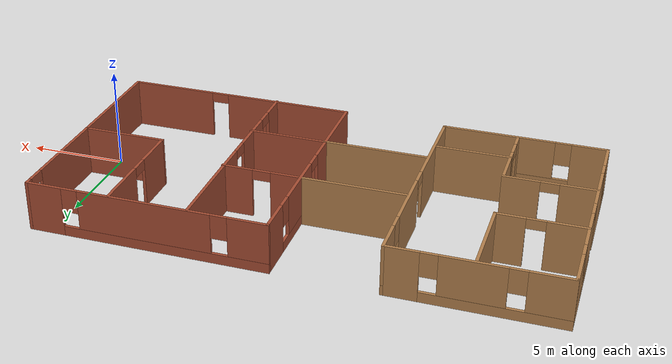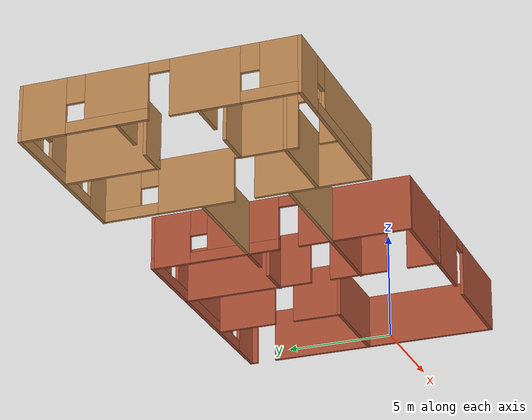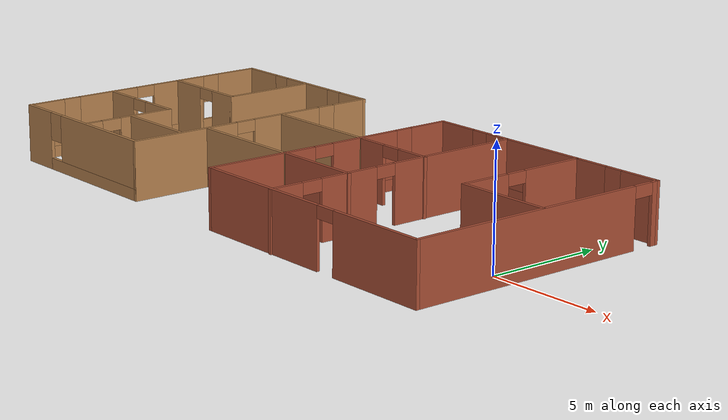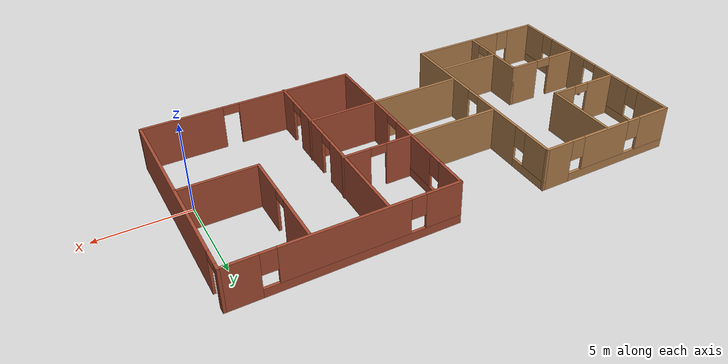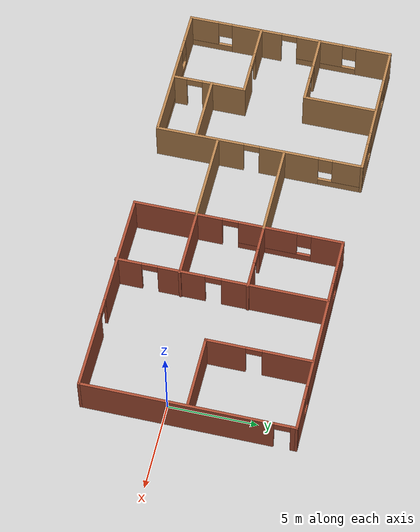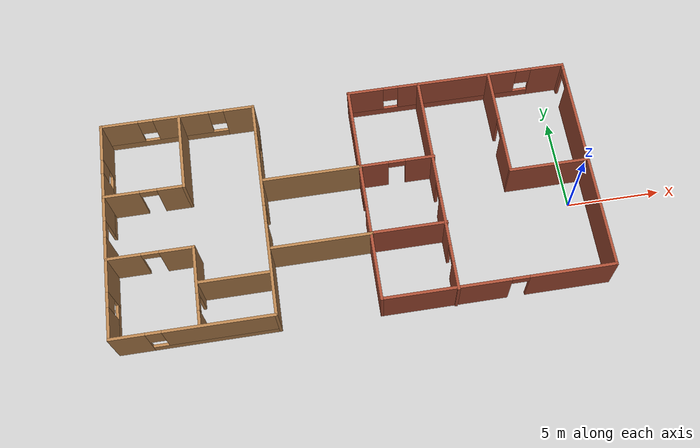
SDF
<?xml version='1.0'?>
<sdf version='1.6'>
  <model name='myhouse'>
    <pose frame=''>-11.5639 1.35423 0 0 -0 0</pose>
    <link name='Wall_0'>
      <pose frame=''>6.64634 -5.89616 0 0 -0 0</pose>
      <visual name='Wall_0_Visual_0'>
        <pose frame=''>-2.69638 0 1.25 0 -0 0</pose>
        <geometry>
          <box>
            <size>6.60723 0.15 2.5</size>
          </box>
        </geometry>
        <material>
          <script>
            <uri>file://media/materials/scripts/gazebo.material</uri>
            <name>Gazebo/Bricks</name>
          </script>
          <ambient>0.760784 0.662745 0.627451 1</ambient>
        </material>
        <meta>
          <layer>0</layer>
        </meta>
      </visual>
      <collision name='Wall_0_Collision_0'>
        <geometry>
          <box>
            <size>6.60723 0.15 2.5</size>
          </box>
        </geometry>
        <pose frame=''>-2.69638 0 1.25 0 -0 0</pose>
      </collision>
      <visual name='Wall_0_Visual_1'>
        <pose frame=''>3.75362 0 1.25 0 -0 0</pose>
        <geometry>
          <box>
            <size>4.49277 0.15 2.5</size>
          </box>
        </geometry>
        <material>
          <script>
            <uri>file://media/materials/scripts/gazebo.material</uri>
            <name>Gazebo/Bricks</name>
          </script>
          <ambient>0.760784 0.662745 0.627451 1</ambient>
        </material>
        <meta>
          <layer>0</layer>
        </meta>
      </visual>
      <collision name='Wall_0_Collision_1'>
        <geometry>
          <box>
            <size>4.49277 0.15 2.5</size>
          </box>
        </geometry>
        <pose frame=''>3.75362 0 1.25 0 -0 0</pose>
      </collision>
      <visual name='Wall_0_Visual_2'>
        <pose frame=''>1.05723 0 2.25 0 -0 0</pose>
        <geometry>
          <box>
            <size>0.9 0.15 0.5</size>
          </box>
        </geometry>
        <material>
          <script>
            <uri>file://media/materials/scripts/gazebo.material</uri>
            <name>Gazebo/Bricks</name>
          </script>
          <ambient>0.760784 0.662745 0.627451 1</ambient>
        </material>
        <meta>
          <layer>0</layer>
        </meta>
      </visual>
      <collision name='Wall_0_Collision_2'>
        <geometry>
          <box>
            <size>0.9 0.15 0.5</size>
          </box>
        </geometry>
        <pose frame=''>1.05723 0 2.25 0 -0 0</pose>
      </collision>
    </link>
    <link name='Wall_1'>
      <pose frame=''>12.5713 0.028839 0 0 -0 1.5708</pose>
      <visual name='Wall_1_Visual_0'>
        <pose frame=''>-0.649931 0 1.25 0 -0 0</pose>
        <geometry>
          <box>
            <size>10.7001 0.15 2.5</size>
          </box>
        </geometry>
        <material>
          <script>
            <uri>file://media/materials/scripts/gazebo.material</uri>
            <name>Gazebo/Bricks</name>
          </script>
          <ambient>0.760784 0.662745 0.627451 1</ambient>
        </material>
        <meta>
          <layer>0</layer>
        </meta>
      </visual>
      <collision name='Wall_1_Collision_0'>
        <geometry>
          <box>
            <size>10.7001 0.15 2.5</size>
          </box>
        </geometry>
        <pose frame=''>-0.649931 0 1.25 0 -0 0</pose>
      </collision>
      <visual name='Wall_1_Visual_1'>
        <pose frame=''>5.80007 0 1.25 0 -0 0</pose>
        <geometry>
          <box>
            <size>0.399862 0.15 2.5</size>
          </box>
        </geometry>
        <material>
          <script>
            <uri>file://media/materials/scripts/gazebo.material</uri>
            <name>Gazebo/Bricks</name>
          </script>
          <ambient>0.760784 0.662745 0.627451 1</ambient>
        </material>
        <meta>
          <layer>0</layer>
        </meta>
      </visual>
      <collision name='Wall_1_Collision_1'>
        <geometry>
          <box>
            <size>0.399862 0.15 2.5</size>
          </box>
        </geometry>
        <pose frame=''>5.80007 0 1.25 0 -0 0</pose>
      </collision>
      <visual name='Wall_1_Visual_2'>
        <pose frame=''>5.15014 0 2.25 0 -0 0</pose>
        <geometry>
          <box>
            <size>0.9 0.15 0.5</size>
          </box>
        </geometry>
        <material>
          <script>
            <uri>file://media/materials/scripts/gazebo.material</uri>
            <name>Gazebo/Bricks</name>
          </script>
          <ambient>0.760784 0.662745 0.627451 1</ambient>
        </material>
        <meta>
          <layer>0</layer>
        </meta>
      </visual>
      <collision name='Wall_1_Collision_2'>
        <geometry>
          <box>
            <size>0.9 0.15 0.5</size>
          </box>
        </geometry>
        <pose frame=''>5.15014 0 2.25 0 -0 0</pose>
      </collision>
    </link>
    <link name='Wall_10'>
      <pose frame=''>8.43683 2.96482 0 0 -0 1.5708</pose>
      <visual name='Wall_10_Visual_0'>
        <pose frame=''>-1.85682 0 1.25 0 -0 0</pose>
        <geometry>
          <box>
            <size>2.28635 0.15 2.5</size>
          </box>
        </geometry>
        <material>
          <script>
            <uri>file://media/materials/scripts/gazebo.material</uri>
            <name>Gazebo/Bricks</name>
          </script>
          <ambient>0.760784 0.662745 0.627451 1</ambient>
        </material>
        <meta>
          <layer>0</layer>
        </meta>
      </visual>
      <collision name='Wall_10_Collision_0'>
        <geometry>
          <box>
            <size>2.28635 0.15 2.5</size>
          </box>
        </geometry>
        <pose frame=''>-1.85682 0 1.25 0 -0 0</pose>
      </collision>
      <visual name='Wall_10_Visual_1'>
        <pose frame=''>1.59318 0 1.25 0 -0 0</pose>
        <geometry>
          <box>
            <size>2.81365 0.15 2.5</size>
          </box>
        </geometry>
        <material>
          <script>
            <uri>file://media/materials/scripts/gazebo.material</uri>
            <name>Gazebo/Bricks</name>
          </script>
          <ambient>0.760784 0.662745 0.627451 1</ambient>
        </material>
        <meta>
          <layer>0</layer>
        </meta>
      </visual>
      <collision name='Wall_10_Collision_1'>
        <geometry>
          <box>
            <size>2.81365 0.15 2.5</size>
          </box>
        </geometry>
        <pose frame=''>1.59318 0 1.25 0 -0 0</pose>
      </collision>
      <visual name='Wall_10_Visual_2'>
        <pose frame=''>-0.26365 0 2.25 0 -0 0</pose>
        <geometry>
          <box>
            <size>0.9 0.15 0.5</size>
          </box>
        </geometry>
        <material>
          <script>
            <uri>file://media/materials/scripts/gazebo.material</uri>
            <name>Gazebo/Bricks</name>
          </script>
          <ambient>0.760784 0.662745 0.627451 1</ambient>
        </material>
        <meta>
          <layer>0</layer>
        </meta>
      </visual>
      <collision name='Wall_10_Collision_2'>
        <geometry>
          <box>
            <size>0.9 0.15 0.5</size>
          </box>
        </geometry>
        <pose frame=''>-0.26365 0 2.25 0 -0 0</pose>
      </collision>
    </link>
    <link name='Wall_12'>
      <pose frame=''>2.68459 1.47756 0 0 -0 0</pose>
      <visual name='Wall_12_Visual_0'>
        <pose frame=''>-1.2392 0 1.25 0 -0 0</pose>
        <geometry>
          <box>
            <size>1.5216 0.15 2.5</size>
          </box>
        </geometry>
        <material>
          <script>
            <uri>file://media/materials/scripts/gazebo.material</uri>
            <name>Gazebo/Bricks</name>
          </script>
          <ambient>0.760784 0.662745 0.627451 1</ambient>
        </material>
        <meta>
          <layer>0</layer>
        </meta>
      </visual>
      <collision name='Wall_12_Collision_0'>
        <geometry>
          <box>
            <size>1.5216 0.15 2.5</size>
          </box>
        </geometry>
        <pose frame=''>-1.2392 0 1.25 0 -0 0</pose>
      </collision>
      <visual name='Wall_12_Visual_1'>
        <pose frame=''>1.2108 0 1.25 0 -0 0</pose>
        <geometry>
          <box>
            <size>1.57841 0.15 2.5</size>
          </box>
        </geometry>
        <material>
          <script>
            <uri>file://media/materials/scripts/gazebo.material</uri>
            <name>Gazebo/Bricks</name>
          </script>
          <ambient>0.760784 0.662745 0.627451 1</ambient>
        </material>
        <meta>
          <layer>0</layer>
        </meta>
      </visual>
      <collision name='Wall_12_Collision_1'>
        <geometry>
          <box>
            <size>1.57841 0.15 2.5</size>
          </box>
        </geometry>
        <pose frame=''>1.2108 0 1.25 0 -0 0</pose>
      </collision>
      <visual name='Wall_12_Visual_2'>
        <pose frame=''>-0.028405 0 2.25 0 -0 0</pose>
        <geometry>
          <box>
            <size>0.9 0.15 0.5</size>
          </box>
        </geometry>
        <material>
          <script>
            <uri>file://media/materials/scripts/gazebo.material</uri>
            <name>Gazebo/Bricks</name>
          </script>
          <ambient>0.760784 0.662745 0.627451 1</ambient>
        </material>
        <meta>
          <layer>0</layer>
        </meta>
      </visual>
      <collision name='Wall_12_Collision_2'>
        <geometry>
          <box>
            <size>0.9 0.15 0.5</size>
          </box>
        </geometry>
        <pose frame=''>-0.028405 0 2.25 0 -0 0</pose>
      </collision>
    </link>
    <link name='Wall_14'>
      <collision name='Wall_14_Collision'>
        <geometry>
          <box>
            <size>4 0.15 2.5</size>
          </box>
        </geometry>
        <pose frame=''>0 0 1.25 0 -0 0</pose>
      </collision>
      <visual name='Wall_14_Visual'>
        <pose frame=''>0 0 1.25 0 -0 0</pose>
        <geometry>
          <box>
            <size>4 0.15 2.5</size>
          </box>
        </geometry>
        <material>
          <script>
            <uri>file://media/materials/scripts/gazebo.material</uri>
            <name>Gazebo/Bricks</name>
          </script>
          <ambient>0.760784 0.662745 0.627451 1</ambient>
        </material>
        <meta>
          <layer>0</layer>
        </meta>
      </visual>
      <pose frame=''>2.68459 -2.34622 0 0 -0 0</pose>
    </link>
    <link name='Wall_16'>
      <collision name='Wall_16_Collision'>
        <geometry>
          <box>
            <size>5.25 0.15 2.5</size>
          </box>
        </geometry>
        <pose frame=''>0 0 1.25 0 -0 0</pose>
      </collision>
      <visual name='Wall_16_Visual'>
        <pose frame=''>0 0 1.25 0 -0 0</pose>
        <geometry>
          <box>
            <size>5.25 0.15 2.5</size>
          </box>
        </geometry>
        <material>
          <script>
            <uri>file://media/materials/scripts/gazebo.material</uri>
            <name>Gazebo/Wood</name>
          </script>
          <ambient>0 0 0 1</ambient>
        </material>
        <meta>
          <layer>0</layer>
        </meta>
      </visual>
      <pose frame=''>-1.79041 1.47756 0 0 -0 3.14159</pose>
    </link>
    <link name='Wall_18'>
      <collision name='Wall_18_Collision'>
        <geometry>
          <box>
            <size>5.25 0.15 2.5</size>
          </box>
        </geometry>
        <pose frame=''>0 0 1.25 0 -0 0</pose>
      </collision>
      <visual name='Wall_18_Visual'>
        <pose frame=''>0 0 1.25 0 -0 0</pose>
        <geometry>
          <box>
            <size>5.25 0.15 2.5</size>
          </box>
        </geometry>
        <material>
          <script>
            <uri>file://media/materials/scripts/gazebo.material</uri>
            <name>Gazebo/Wood</name>
          </script>
          <ambient>0 0 0 1</ambient>
        </material>
        <meta>
          <layer>0</layer>
        </meta>
      </visual>
      <pose frame=''>-1.79041 -2.37244 0 0 -0 0</pose>
    </link>
    <link name='Wall_2'>
      <pose frame=''>6.64634 5.95384 0 0 -0 3.14159</pose>
      <visual name='Wall_2_Visual_0'>
        <pose frame=''>-5.07459 0 1.25 0 -0 0</pose>
        <geometry>
          <box>
            <size>1.85083 0.15 2.5</size>
          </box>
        </geometry>
        <material>
          <script>
            <uri>file://media/materials/scripts/gazebo.material</uri>
            <name>Gazebo/Bricks</name>
          </script>
          <ambient>0.760784 0.662745 0.627451 1</ambient>
        </material>
        <meta>
          <layer>0</layer>
        </meta>
      </visual>
      <collision name='Wall_2_Collision_0'>
        <geometry>
          <box>
            <size>1.85083 0.15 2.5</size>
          </box>
        </geometry>
        <pose frame=''>-5.07459 0 1.25 0 -0 0</pose>
      </collision>
      <visual name='Wall_2_Visual_1'>
        <pose frame=''>0.925414 0 0.25 0 -0 0</pose>
        <geometry>
          <box>
            <size>10.1492 0.15 0.5</size>
          </box>
        </geometry>
        <material>
          <script>
            <uri>file://media/materials/scripts/gazebo.material</uri>
            <name>Gazebo/Bricks</name>
          </script>
          <ambient>0.760784 0.662745 0.627451 1</ambient>
        </material>
        <meta>
          <layer>0</layer>
        </meta>
      </visual>
      <collision name='Wall_2_Collision_1'>
        <geometry>
          <box>
            <size>10.1492 0.15 0.5</size>
          </box>
        </geometry>
        <pose frame=''>0.925414 0 0.25 0 -0 0</pose>
      </collision>
      <visual name='Wall_2_Visual_2'>
        <pose frame=''>-0.06305 0 1.5 0 -0 0</pose>
        <geometry>
          <box>
            <size>6.57224 0.15 2</size>
          </box>
        </geometry>
        <material>
          <script>
            <uri>file://media/materials/scripts/gazebo.material</uri>
            <name>Gazebo/Bricks</name>
          </script>
          <ambient>0.760784 0.662745 0.627451 1</ambient>
        </material>
        <meta>
          <layer>0</layer>
        </meta>
      </visual>
      <collision name='Wall_2_Collision_2'>
        <geometry>
          <box>
            <size>6.57224 0.15 2</size>
          </box>
        </geometry>
        <pose frame=''>-0.06305 0 1.5 0 -0 0</pose>
      </collision>
      <visual name='Wall_2_Visual_3'>
        <pose frame=''>5.01154 0 1.5 0 -0 0</pose>
        <geometry>
          <box>
            <size>1.97693 0.15 2</size>
          </box>
        </geometry>
        <material>
          <script>
            <uri>file://media/materials/scripts/gazebo.material</uri>
            <name>Gazebo/Bricks</name>
          </script>
          <ambient>0.760784 0.662745 0.627451 1</ambient>
        </material>
        <meta>
          <layer>0</layer>
        </meta>
      </visual>
      <collision name='Wall_2_Collision_3'>
        <geometry>
          <box>
            <size>1.97693 0.15 2</size>
          </box>
        </geometry>
        <pose frame=''>5.01154 0 1.5 0 -0 0</pose>
      </collision>
      <visual name='Wall_2_Visual_4'>
        <pose frame=''>-3.74917 0 1.9 0 -0 0</pose>
        <geometry>
          <box>
            <size>0.8 0.15 1.2</size>
          </box>
        </geometry>
        <material>
          <script>
            <uri>file://media/materials/scripts/gazebo.material</uri>
            <name>Gazebo/Bricks</name>
          </script>
          <ambient>0.760784 0.662745 0.627451 1</ambient>
        </material>
        <meta>
          <layer>0</layer>
        </meta>
      </visual>
      <collision name='Wall_2_Collision_4'>
        <geometry>
          <box>
            <size>0.8 0.15 1.2</size>
          </box>
        </geometry>
        <pose frame=''>-3.74917 0 1.9 0 -0 0</pose>
      </collision>
      <visual name='Wall_2_Visual_5'>
        <pose frame=''>3.62307 0 1.9 0 -0 0</pose>
        <geometry>
          <box>
            <size>0.8 0.15 1.2</size>
          </box>
        </geometry>
        <material>
          <script>
            <uri>file://media/materials/scripts/gazebo.material</uri>
            <name>Gazebo/Bricks</name>
          </script>
          <ambient>0.760784 0.662745 0.627451 1</ambient>
        </material>
        <meta>
          <layer>0</layer>
        </meta>
      </visual>
      <collision name='Wall_2_Collision_5'>
        <geometry>
          <box>
            <size>0.8 0.15 1.2</size>
          </box>
        </geometry>
        <pose frame=''>3.62307 0 1.9 0 -0 0</pose>
      </collision>
    </link>
    <link name='Wall_21'>
      <pose frame=''>-4.47134 0.030313 0 0 -0 1.5708</pose>
      <visual name='Wall_21_Visual_0'>
        <pose frame=''>-3.44968 0 1.25 0 -0 0</pose>
        <geometry>
          <box>
            <size>5.10065 0.15 2.5</size>
          </box>
        </geometry>
        <material>
          <script>
            <uri>file://media/materials/scripts/gazebo.material</uri>
            <name>Gazebo/Wood</name>
          </script>
          <ambient>0.333333 1 0 1</ambient>
        </material>
        <meta>
          <layer>0</layer>
        </meta>
      </visual>
      <collision name='Wall_21_Collision_0'>
        <geometry>
          <box>
            <size>5.10065 0.15 2.5</size>
          </box>
        </geometry>
        <pose frame=''>-3.44968 0 1.25 0 -0 0</pose>
      </collision>
      <visual name='Wall_21_Visual_1'>
        <pose frame=''>1.71697 0 1.25 0 -0 0</pose>
        <geometry>
          <box>
            <size>3.43263 0.15 2.5</size>
          </box>
        </geometry>
        <material>
          <script>
            <uri>file://media/materials/scripts/gazebo.material</uri>
            <name>Gazebo/Wood</name>
          </script>
          <ambient>0.333333 1 0 1</ambient>
        </material>
        <meta>
          <layer>0</layer>
        </meta>
      </visual>
      <collision name='Wall_21_Collision_1'>
        <geometry>
          <box>
            <size>3.43263 0.15 2.5</size>
          </box>
        </geometry>
        <pose frame=''>1.71697 0 1.25 0 -0 0</pose>
      </collision>
      <visual name='Wall_21_Visual_2'>
        <pose frame=''>4.71664 0 0.25 0 -0 0</pose>
        <geometry>
          <box>
            <size>2.56672 0.15 0.5</size>
          </box>
        </geometry>
        <material>
          <script>
            <uri>file://media/materials/scripts/gazebo.material</uri>
            <name>Gazebo/Wood</name>
          </script>
          <ambient>0.333333 1 0 1</ambient>
        </material>
        <meta>
          <layer>0</layer>
        </meta>
      </visual>
      <collision name='Wall_21_Collision_2'>
        <geometry>
          <box>
            <size>2.56672 0.15 0.5</size>
          </box>
        </geometry>
        <pose frame=''>4.71664 0 0.25 0 -0 0</pose>
      </collision>
      <visual name='Wall_21_Visual_3'>
        <pose frame=''>5.11664 0 1.5 0 -0 0</pose>
        <geometry>
          <box>
            <size>1.76672 0.15 2</size>
          </box>
        </geometry>
        <material>
          <script>
            <uri>file://media/materials/scripts/gazebo.material</uri>
            <name>Gazebo/Wood</name>
          </script>
          <ambient>0.333333 1 0 1</ambient>
        </material>
        <meta>
          <layer>0</layer>
        </meta>
      </visual>
      <collision name='Wall_21_Collision_3'>
        <geometry>
          <box>
            <size>1.76672 0.15 2</size>
          </box>
        </geometry>
        <pose frame=''>5.11664 0 1.5 0 -0 0</pose>
      </collision>
      <visual name='Wall_21_Visual_4'>
        <pose frame=''>3.83328 0 1.9 0 -0 0</pose>
        <geometry>
          <box>
            <size>0.8 0.15 1.2</size>
          </box>
        </geometry>
        <material>
          <script>
            <uri>file://media/materials/scripts/gazebo.material</uri>
            <name>Gazebo/Wood</name>
          </script>
          <ambient>0.333333 1 0 1</ambient>
        </material>
        <meta>
          <layer>0</layer>
        </meta>
      </visual>
      <collision name='Wall_21_Collision_4'>
        <geometry>
          <box>
            <size>0.8 0.15 1.2</size>
          </box>
        </geometry>
        <pose frame=''>3.83328 0 1.9 0 -0 0</pose>
      </collision>
      <visual name='Wall_21_Visual_5'>
        <pose frame=''>-0.449349 0 2.25 0 -0 0</pose>
        <geometry>
          <box>
            <size>0.9 0.15 0.5</size>
          </box>
        </geometry>
        <material>
          <script>
            <uri>file://media/materials/scripts/gazebo.material</uri>
            <name>Gazebo/Wood</name>
          </script>
          <ambient>0.333333 1 0 1</ambient>
        </material>
        <meta>
          <layer>0</layer>
        </meta>
      </visual>
      <collision name='Wall_21_Collision_5'>
        <geometry>
          <box>
            <size>0.9 0.15 0.5</size>
          </box>
        </geometry>
        <pose frame=''>-0.449349 0 2.25 0 -0 0</pose>
      </collision>
    </link>
    <link name='Wall_22'>
      <pose frame=''>-8.52134 5.95531 0 0 -0 3.14159</pose>
      <visual name='Wall_22_Visual_0'>
        <pose frame=''>-3.29332 0 1.25 0 -0 0</pose>
        <geometry>
          <box>
            <size>1.66337 0.15 2.5</size>
          </box>
        </geometry>
        <material>
          <script>
            <uri>file://media/materials/scripts/gazebo.material</uri>
            <name>Gazebo/Wood</name>
          </script>
          <ambient>0.333333 1 0 1</ambient>
        </material>
        <meta>
          <layer>0</layer>
        </meta>
      </visual>
      <collision name='Wall_22_Collision_0'>
        <geometry>
          <box>
            <size>1.66337 0.15 2.5</size>
          </box>
        </geometry>
        <pose frame=''>-3.29332 0 1.25 0 -0 0</pose>
      </collision>
      <visual name='Wall_22_Visual_1'>
        <pose frame=''>0.831683 0 0.25 0 -0 0</pose>
        <geometry>
          <box>
            <size>6.58663 0.15 0.5</size>
          </box>
        </geometry>
        <material>
          <script>
            <uri>file://media/materials/scripts/gazebo.material</uri>
            <name>Gazebo/Wood</name>
          </script>
          <ambient>0.333333 1 0 1</ambient>
        </material>
        <meta>
          <layer>0</layer>
        </meta>
      </visual>
      <collision name='Wall_22_Collision_1'>
        <geometry>
          <box>
            <size>6.58663 0.15 0.5</size>
          </box>
        </geometry>
        <pose frame=''>0.831683 0 0.25 0 -0 0</pose>
      </collision>
      <visual name='Wall_22_Visual_2'>
        <pose frame=''>-0.180335 0 1.5 0 -0 0</pose>
        <geometry>
          <box>
            <size>2.9626 0.15 2</size>
          </box>
        </geometry>
        <material>
          <script>
            <uri>file://media/materials/scripts/gazebo.material</uri>
            <name>Gazebo/Wood</name>
          </script>
          <ambient>0.333333 1 0 1</ambient>
        </material>
        <meta>
          <layer>0</layer>
        </meta>
      </visual>
      <collision name='Wall_22_Collision_2'>
        <geometry>
          <box>
            <size>2.9626 0.15 2</size>
          </box>
        </geometry>
        <pose frame=''>-0.180335 0 1.5 0 -0 0</pose>
      </collision>
      <visual name='Wall_22_Visual_3'>
        <pose frame=''>3.11298 0 1.5 0 -0 0</pose>
        <geometry>
          <box>
            <size>2.02404 0.15 2</size>
          </box>
        </geometry>
        <material>
          <script>
            <uri>file://media/materials/scripts/gazebo.material</uri>
            <name>Gazebo/Wood</name>
          </script>
          <ambient>0.333333 1 0 1</ambient>
        </material>
        <meta>
          <layer>0</layer>
        </meta>
      </visual>
      <collision name='Wall_22_Collision_3'>
        <geometry>
          <box>
            <size>2.02404 0.15 2</size>
          </box>
        </geometry>
        <pose frame=''>3.11298 0 1.5 0 -0 0</pose>
      </collision>
      <visual name='Wall_22_Visual_4'>
        <pose frame=''>-2.06163 0 1.9 0 -0 0</pose>
        <geometry>
          <box>
            <size>0.8 0.15 1.2</size>
          </box>
        </geometry>
        <material>
          <script>
            <uri>file://media/materials/scripts/gazebo.material</uri>
            <name>Gazebo/Wood</name>
          </script>
          <ambient>0.333333 1 0 1</ambient>
        </material>
        <meta>
          <layer>0</layer>
        </meta>
      </visual>
      <collision name='Wall_22_Collision_4'>
        <geometry>
          <box>
            <size>0.8 0.15 1.2</size>
          </box>
        </geometry>
        <pose frame=''>-2.06163 0 1.9 0 -0 0</pose>
      </collision>
      <visual name='Wall_22_Visual_5'>
        <pose frame=''>1.70096 0 1.9 0 -0 0</pose>
        <geometry>
          <box>
            <size>0.8 0.15 1.2</size>
          </box>
        </geometry>
        <material>
          <script>
            <uri>file://media/materials/scripts/gazebo.material</uri>
            <name>Gazebo/Wood</name>
          </script>
          <ambient>0.333333 1 0 1</ambient>
        </material>
        <meta>
          <layer>0</layer>
        </meta>
      </visual>
      <collision name='Wall_22_Collision_5'>
        <geometry>
          <box>
            <size>0.8 0.15 1.2</size>
          </box>
        </geometry>
        <pose frame=''>1.70096 0 1.9 0 -0 0</pose>
      </collision>
    </link>
    <link name='Wall_23'>
      <pose frame=''>-12.5713 0.030313 0 0 0 -1.5708</pose>
      <visual name='Wall_23_Visual_0'>
        <pose frame=''>-4.96369 0 1.25 0 -0 0</pose>
        <geometry>
          <box>
            <size>2.07262 0.15 2.5</size>
          </box>
        </geometry>
        <material>
          <script>
            <uri>file://media/materials/scripts/gazebo.material</uri>
            <name>Gazebo/Wood</name>
          </script>
          <ambient>0.333333 1 0 1</ambient>
        </material>
        <meta>
          <layer>0</layer>
        </meta>
      </visual>
      <collision name='Wall_23_Collision_0'>
        <geometry>
          <box>
            <size>2.07262 0.15 2.5</size>
          </box>
        </geometry>
        <pose frame=''>-4.96369 0 1.25 0 -0 0</pose>
      </collision>
      <visual name='Wall_23_Visual_1'>
        <pose frame=''>1.98856 0 1.25 0 -0 0</pose>
        <geometry>
          <box>
            <size>2.97378 0.15 2.5</size>
          </box>
        </geometry>
        <material>
          <script>
            <uri>file://media/materials/scripts/gazebo.material</uri>
            <name>Gazebo/Wood</name>
          </script>
          <ambient>0.333333 1 0 1</ambient>
        </material>
        <meta>
          <layer>0</layer>
        </meta>
      </visual>
      <collision name='Wall_23_Collision_1'>
        <geometry>
          <box>
            <size>2.97378 0.15 2.5</size>
          </box>
        </geometry>
        <pose frame=''>1.98856 0 1.25 0 -0 0</pose>
      </collision>
      <visual name='Wall_23_Visual_2'>
        <pose frame=''>-2.16285 0 0.25 0 -0 0</pose>
        <geometry>
          <box>
            <size>3.52906 0.15 0.5</size>
          </box>
        </geometry>
        <material>
          <script>
            <uri>file://media/materials/scripts/gazebo.material</uri>
            <name>Gazebo/Wood</name>
          </script>
          <ambient>0.333333 1 0 1</ambient>
        </material>
        <meta>
          <layer>0</layer>
        </meta>
      </visual>
      <collision name='Wall_23_Collision_2'>
        <geometry>
          <box>
            <size>3.52906 0.15 0.5</size>
          </box>
        </geometry>
        <pose frame=''>-2.16285 0 0.25 0 -0 0</pose>
      </collision>
      <visual name='Wall_23_Visual_3'>
        <pose frame=''>4.73773 0 0.25 0 -0 0</pose>
        <geometry>
          <box>
            <size>2.52454 0.15 0.5</size>
          </box>
        </geometry>
        <material>
          <script>
            <uri>file://media/materials/scripts/gazebo.material</uri>
            <name>Gazebo/Wood</name>
          </script>
          <ambient>0.333333 1 0 1</ambient>
        </material>
        <meta>
          <layer>0</layer>
        </meta>
      </visual>
      <collision name='Wall_23_Collision_3'>
        <geometry>
          <box>
            <size>2.52454 0.15 0.5</size>
          </box>
        </geometry>
        <pose frame=''>4.73773 0 0.25 0 -0 0</pose>
      </collision>
      <visual name='Wall_23_Visual_4'>
        <pose frame=''>-1.76285 0 1.5 0 -0 0</pose>
        <geometry>
          <box>
            <size>2.72906 0.15 2</size>
          </box>
        </geometry>
        <material>
          <script>
            <uri>file://media/materials/scripts/gazebo.material</uri>
            <name>Gazebo/Wood</name>
          </script>
          <ambient>0.333333 1 0 1</ambient>
        </material>
        <meta>
          <layer>0</layer>
        </meta>
      </visual>
      <collision name='Wall_23_Collision_4'>
        <geometry>
          <box>
            <size>2.72906 0.15 2</size>
          </box>
        </geometry>
        <pose frame=''>-1.76285 0 1.5 0 -0 0</pose>
      </collision>
      <visual name='Wall_23_Visual_5'>
        <pose frame=''>-1.76285 0 1.5 0 -0 0</pose>
        <geometry>
          <box>
            <size>2.72906 0.15 2</size>
          </box>
        </geometry>
        <material>
          <script>
            <uri>file://media/materials/scripts/gazebo.material</uri>
            <name>Gazebo/Wood</name>
          </script>
          <ambient>0.333333 1 0 1</ambient>
        </material>
        <meta>
          <layer>0</layer>
        </meta>
      </visual>
      <collision name='Wall_23_Collision_5'>
        <geometry>
          <box>
            <size>2.72906 0.15 2</size>
          </box>
        </geometry>
        <pose frame=''>-1.76285 0 1.5 0 -0 0</pose>
      </collision>
      <visual name='Wall_23_Visual_6'>
        <pose frame=''>5.13773 0 1.5 0 -0 0</pose>
        <geometry>
          <box>
            <size>1.72454 0.15 2</size>
          </box>
        </geometry>
        <material>
          <script>
            <uri>file://media/materials/scripts/gazebo.material</uri>
            <name>Gazebo/Wood</name>
          </script>
          <ambient>0.333333 1 0 1</ambient>
        </material>
        <meta>
          <layer>0</layer>
        </meta>
      </visual>
      <collision name='Wall_23_Collision_6'>
        <geometry>
          <box>
            <size>1.72454 0.15 2</size>
          </box>
        </geometry>
        <pose frame=''>5.13773 0 1.5 0 -0 0</pose>
      </collision>
      <visual name='Wall_23_Visual_7'>
        <pose frame=''>-3.52738 0 1.9 0 -0 0</pose>
        <geometry>
          <box>
            <size>0.8 0.15 1.2</size>
          </box>
        </geometry>
        <material>
          <script>
            <uri>file://media/materials/scripts/gazebo.material</uri>
            <name>Gazebo/Wood</name>
          </script>
          <ambient>0.333333 1 0 1</ambient>
        </material>
        <meta>
          <layer>0</layer>
        </meta>
      </visual>
      <collision name='Wall_23_Collision_7'>
        <geometry>
          <box>
            <size>0.8 0.15 1.2</size>
          </box>
        </geometry>
        <pose frame=''>-3.52738 0 1.9 0 -0 0</pose>
      </collision>
      <visual name='Wall_23_Visual_8'>
        <pose frame=''>3.87546 0 1.9 0 -0 0</pose>
        <geometry>
          <box>
            <size>0.8 0.15 1.2</size>
          </box>
        </geometry>
        <material>
          <script>
            <uri>file://media/materials/scripts/gazebo.material</uri>
            <name>Gazebo/Wood</name>
          </script>
          <ambient>0.333333 1 0 1</ambient>
        </material>
        <meta>
          <layer>0</layer>
        </meta>
      </visual>
      <collision name='Wall_23_Collision_8'>
        <geometry>
          <box>
            <size>0.8 0.15 1.2</size>
          </box>
        </geometry>
        <pose frame=''>3.87546 0 1.9 0 -0 0</pose>
      </collision>
      <visual name='Wall_23_Visual_9'>
        <pose frame=''>0.051676 0 2.25 0 -0 0</pose>
        <geometry>
          <box>
            <size>0.9 0.15 0.5</size>
          </box>
        </geometry>
        <material>
          <script>
            <uri>file://media/materials/scripts/gazebo.material</uri>
            <name>Gazebo/Wood</name>
          </script>
          <ambient>0.333333 1 0 1</ambient>
        </material>
        <meta>
          <layer>0</layer>
        </meta>
      </visual>
      <collision name='Wall_23_Collision_9'>
        <geometry>
          <box>
            <size>0.9 0.15 0.5</size>
          </box>
        </geometry>
        <pose frame=''>0.051676 0 2.25 0 -0 0</pose>
      </collision>
      <visual name='Wall_23_Visual_10'>
        <pose frame=''>0.051676 0 2.25 0 -0 0</pose>
        <geometry>
          <box>
            <size>0.9 0.15 0.5</size>
          </box>
        </geometry>
        <material>
          <script>
            <uri>file://media/materials/scripts/gazebo.material</uri>
            <name>Gazebo/Wood</name>
          </script>
          <ambient>0.333333 1 0 1</ambient>
        </material>
        <meta>
          <layer>0</layer>
        </meta>
      </visual>
      <collision name='Wall_23_Collision_10'>
        <geometry>
          <box>
            <size>0.9 0.15 0.5</size>
          </box>
        </geometry>
        <pose frame=''>0.051676 0 2.25 0 -0 0</pose>
      </collision>
    </link>
    <link name='Wall_24'>
      <pose frame=''>-8.52134 -5.89469 0 0 -0 0</pose>
      <visual name='Wall_24_Visual_0'>
        <pose frame=''>-3.22005 0 1.25 0 -0 0</pose>
        <geometry>
          <box>
            <size>1.8099 0.15 2.5</size>
          </box>
        </geometry>
        <material>
          <script>
            <uri>file://media/materials/scripts/gazebo.material</uri>
            <name>Gazebo/Wood</name>
          </script>
          <ambient>0.333333 1 0 1</ambient>
        </material>
        <meta>
          <layer>0</layer>
        </meta>
      </visual>
      <collision name='Wall_24_Collision_0'>
        <geometry>
          <box>
            <size>1.8099 0.15 2.5</size>
          </box>
        </geometry>
        <pose frame=''>-3.22005 0 1.25 0 -0 0</pose>
      </collision>
      <visual name='Wall_24_Visual_1'>
        <pose frame=''>0.904952 0 0.25 0 -0 0</pose>
        <geometry>
          <box>
            <size>6.4401 0.15 0.5</size>
          </box>
        </geometry>
        <material>
          <script>
            <uri>file://media/materials/scripts/gazebo.material</uri>
            <name>Gazebo/Wood</name>
          </script>
          <ambient>0.333333 1 0 1</ambient>
        </material>
        <meta>
          <layer>0</layer>
        </meta>
      </visual>
      <collision name='Wall_24_Collision_1'>
        <geometry>
          <box>
            <size>6.4401 0.15 0.5</size>
          </box>
        </geometry>
        <pose frame=''>0.904952 0 0.25 0 -0 0</pose>
      </collision>
      <visual name='Wall_24_Visual_2'>
        <pose frame=''>1.30495 0 1.5 0 -0 0</pose>
        <geometry>
          <box>
            <size>5.6401 0.15 2</size>
          </box>
        </geometry>
        <material>
          <script>
            <uri>file://media/materials/scripts/gazebo.material</uri>
            <name>Gazebo/Wood</name>
          </script>
          <ambient>0.333333 1 0 1</ambient>
        </material>
        <meta>
          <layer>0</layer>
        </meta>
      </visual>
      <collision name='Wall_24_Collision_2'>
        <geometry>
          <box>
            <size>5.6401 0.15 2</size>
          </box>
        </geometry>
        <pose frame=''>1.30495 0 1.5 0 -0 0</pose>
      </collision>
      <visual name='Wall_24_Visual_3'>
        <pose frame=''>-1.9151 0 1.9 0 -0 0</pose>
        <geometry>
          <box>
            <size>0.8 0.15 1.2</size>
          </box>
        </geometry>
        <material>
          <script>
            <uri>file://media/materials/scripts/gazebo.material</uri>
            <name>Gazebo/Wood</name>
          </script>
          <ambient>0.333333 1 0 1</ambient>
        </material>
        <meta>
          <layer>0</layer>
        </meta>
      </visual>
      <collision name='Wall_24_Collision_3'>
        <geometry>
          <box>
            <size>0.8 0.15 1.2</size>
          </box>
        </geometry>
        <pose frame=''>-1.9151 0 1.9 0 -0 0</pose>
      </collision>
    </link>
    <link name='Wall_26'>
      <pose frame=''>-10.4972 1.78346 0 0 -0 0</pose>
      <visual name='Wall_26_Visual_0'>
        <pose frame=''>-1.18066 0 1.25 0 -0 0</pose>
        <geometry>
          <box>
            <size>1.88868 0.15 2.5</size>
          </box>
        </geometry>
        <material>
          <script>
            <uri>file://media/materials/scripts/gazebo.material</uri>
            <name>Gazebo/Wood</name>
          </script>
          <ambient>0.333333 1 0 1</ambient>
        </material>
        <meta>
          <layer>0</layer>
        </meta>
      </visual>
      <collision name='Wall_26_Collision_0'>
        <geometry>
          <box>
            <size>1.88868 0.15 2.5</size>
          </box>
        </geometry>
        <pose frame=''>-1.18066 0 1.25 0 -0 0</pose>
      </collision>
      <visual name='Wall_26_Visual_1'>
        <pose frame=''>1.39434 0 1.25 0 -0 0</pose>
        <geometry>
          <box>
            <size>1.46132 0.15 2.5</size>
          </box>
        </geometry>
        <material>
          <script>
            <uri>file://media/materials/scripts/gazebo.material</uri>
            <name>Gazebo/Wood</name>
          </script>
          <ambient>0.333333 1 0 1</ambient>
        </material>
        <meta>
          <layer>0</layer>
        </meta>
      </visual>
      <collision name='Wall_26_Collision_1'>
        <geometry>
          <box>
            <size>1.46132 0.15 2.5</size>
          </box>
        </geometry>
        <pose frame=''>1.39434 0 1.25 0 -0 0</pose>
      </collision>
      <visual name='Wall_26_Visual_2'>
        <pose frame=''>0.213676 0 2.25 0 -0 0</pose>
        <geometry>
          <box>
            <size>0.9 0.15 0.5</size>
          </box>
        </geometry>
        <material>
          <script>
            <uri>file://media/materials/scripts/gazebo.material</uri>
            <name>Gazebo/Wood</name>
          </script>
          <ambient>0.333333 1 0 1</ambient>
        </material>
        <meta>
          <layer>0</layer>
        </meta>
      </visual>
      <collision name='Wall_26_Collision_2'>
        <geometry>
          <box>
            <size>0.9 0.15 0.5</size>
          </box>
        </geometry>
        <pose frame=''>0.213676 0 2.25 0 -0 0</pose>
      </collision>
    </link>
    <link name='Wall_27'>
      <collision name='Wall_27_Collision'>
        <geometry>
          <box>
            <size>4.25 0.15 2.5</size>
          </box>
        </geometry>
        <pose frame=''>0 0 1.25 0 -0 0</pose>
      </collision>
      <visual name='Wall_27_Visual'>
        <pose frame=''>0 0 1.25 0 -0 0</pose>
        <geometry>
          <box>
            <size>4.25 0.15 2.5</size>
          </box>
        </geometry>
        <material>
          <script>
            <uri>file://media/materials/scripts/gazebo.material</uri>
            <name>Gazebo/Wood</name>
          </script>
          <ambient>0.333333 1 0 1</ambient>
        </material>
        <meta>
          <layer>0</layer>
        </meta>
      </visual>
      <pose frame=''>-8.44716 3.83346 0 0 -0 1.5708</pose>
    </link>
    <link name='Wall_29'>
      <pose frame=''>-10.3722 -1.70382 0 0 -0 0</pose>
      <visual name='Wall_29_Visual_0'>
        <pose frame=''>-1.35155 0 1.25 0 -0 0</pose>
        <geometry>
          <box>
            <size>1.79691 0.15 2.5</size>
          </box>
        </geometry>
        <material>
          <script>
            <uri>file://media/materials/scripts/gazebo.material</uri>
            <name>Gazebo/Wood</name>
          </script>
          <ambient>0.333333 1 0 1</ambient>
        </material>
        <meta>
          <layer>0</layer>
        </meta>
      </visual>
      <collision name='Wall_29_Collision_0'>
        <geometry>
          <box>
            <size>1.79691 0.15 2.5</size>
          </box>
        </geometry>
        <pose frame=''>-1.35155 0 1.25 0 -0 0</pose>
      </collision>
      <visual name='Wall_29_Visual_1'>
        <pose frame=''>1.34845 0 1.25 0 -0 0</pose>
        <geometry>
          <box>
            <size>1.80309 0.15 2.5</size>
          </box>
        </geometry>
        <material>
          <script>
            <uri>file://media/materials/scripts/gazebo.material</uri>
            <name>Gazebo/Wood</name>
          </script>
          <ambient>0.333333 1 0 1</ambient>
        </material>
        <meta>
          <layer>0</layer>
        </meta>
      </visual>
      <collision name='Wall_29_Collision_1'>
        <geometry>
          <box>
            <size>1.80309 0.15 2.5</size>
          </box>
        </geometry>
        <pose frame=''>1.34845 0 1.25 0 -0 0</pose>
      </collision>
      <visual name='Wall_29_Visual_2'>
        <pose frame=''>-0.003094 0 2.25 0 -0 0</pose>
        <geometry>
          <box>
            <size>0.9 0.15 0.5</size>
          </box>
        </geometry>
        <material>
          <script>
            <uri>file://media/materials/scripts/gazebo.material</uri>
            <name>Gazebo/Wood</name>
          </script>
          <ambient>0.333333 1 0 1</ambient>
        </material>
        <meta>
          <layer>0</layer>
        </meta>
      </visual>
      <collision name='Wall_29_Collision_2'>
        <geometry>
          <box>
            <size>0.9 0.15 0.5</size>
          </box>
        </geometry>
        <pose frame=''>-0.003094 0 2.25 0 -0 0</pose>
      </collision>
    </link>
    <link name='Wall_3'>
      <pose frame=''>0.72134 0.028839 0 0 0 -1.5708</pose>
      <visual name='Wall_3_Visual_0'>
        <pose frame=''>-5.07149 0 1.25 0 -0 0</pose>
        <geometry>
          <box>
            <size>1.85701 0.15 2.5</size>
          </box>
        </geometry>
        <material>
          <script>
            <uri>file://media/materials/scripts/gazebo.material</uri>
            <name>Gazebo/Bricks</name>
          </script>
          <ambient>0.760784 0.662745 0.627451 1</ambient>
        </material>
        <meta>
          <layer>0</layer>
        </meta>
      </visual>
      <collision name='Wall_3_Collision_0'>
        <geometry>
          <box>
            <size>1.85701 0.15 2.5</size>
          </box>
        </geometry>
        <pose frame=''>-5.07149 0 1.25 0 -0 0</pose>
      </collision>
      <visual name='Wall_3_Visual_1'>
        <pose frame=''>3.44894 0 1.25 0 -0 0</pose>
        <geometry>
          <box>
            <size>5.10213 0.15 2.5</size>
          </box>
        </geometry>
        <material>
          <script>
            <uri>file://media/materials/scripts/gazebo.material</uri>
            <name>Gazebo/Bricks</name>
          </script>
          <ambient>0.760784 0.662745 0.627451 1</ambient>
        </material>
        <meta>
          <layer>0</layer>
        </meta>
      </visual>
      <collision name='Wall_3_Collision_1'>
        <geometry>
          <box>
            <size>5.10213 0.15 2.5</size>
          </box>
        </geometry>
        <pose frame=''>3.44894 0 1.25 0 -0 0</pose>
      </collision>
      <visual name='Wall_3_Visual_2'>
        <pose frame=''>-2.07256 0 0.25 0 -0 0</pose>
        <geometry>
          <box>
            <size>4.14086 0.15 0.5</size>
          </box>
        </geometry>
        <material>
          <script>
            <uri>file://media/materials/scripts/gazebo.material</uri>
            <name>Gazebo/Bricks</name>
          </script>
          <ambient>0.760784 0.662745 0.627451 1</ambient>
        </material>
        <meta>
          <layer>0</layer>
        </meta>
      </visual>
      <collision name='Wall_3_Collision_2'>
        <geometry>
          <box>
            <size>4.14086 0.15 0.5</size>
          </box>
        </geometry>
        <pose frame=''>-2.07256 0 0.25 0 -0 0</pose>
      </collision>
      <visual name='Wall_3_Visual_3'>
        <pose frame=''>-1.67256 0 1.5 0 -0 0</pose>
        <geometry>
          <box>
            <size>3.34086 0.15 2</size>
          </box>
        </geometry>
        <material>
          <script>
            <uri>file://media/materials/scripts/gazebo.material</uri>
            <name>Gazebo/Bricks</name>
          </script>
          <ambient>0.760784 0.662745 0.627451 1</ambient>
        </material>
        <meta>
          <layer>0</layer>
        </meta>
      </visual>
      <collision name='Wall_3_Collision_3'>
        <geometry>
          <box>
            <size>3.34086 0.15 2</size>
          </box>
        </geometry>
        <pose frame=''>-1.67256 0 1.5 0 -0 0</pose>
      </collision>
      <visual name='Wall_3_Visual_4'>
        <pose frame=''>-3.74299 0 1.9 0 -0 0</pose>
        <geometry>
          <box>
            <size>0.8 0.15 1.2</size>
          </box>
        </geometry>
        <material>
          <script>
            <uri>file://media/materials/scripts/gazebo.material</uri>
            <name>Gazebo/Bricks</name>
          </script>
          <ambient>0.760784 0.662745 0.627451 1</ambient>
        </material>
        <meta>
          <layer>0</layer>
        </meta>
      </visual>
      <collision name='Wall_3_Collision_4'>
        <geometry>
          <box>
            <size>0.8 0.15 1.2</size>
          </box>
        </geometry>
        <pose frame=''>-3.74299 0 1.9 0 -0 0</pose>
      </collision>
      <visual name='Wall_3_Visual_5'>
        <pose frame=''>0.447874 0 2.25 0 -0 0</pose>
        <geometry>
          <box>
            <size>0.9 0.15 0.5</size>
          </box>
        </geometry>
        <material>
          <script>
            <uri>file://media/materials/scripts/gazebo.material</uri>
            <name>Gazebo/Bricks</name>
          </script>
          <ambient>0.760784 0.662745 0.627451 1</ambient>
        </material>
        <meta>
          <layer>0</layer>
        </meta>
      </visual>
      <collision name='Wall_3_Collision_5'>
        <geometry>
          <box>
            <size>0.9 0.15 0.5</size>
          </box>
        </geometry>
        <pose frame=''>0.447874 0 2.25 0 -0 0</pose>
      </collision>
    </link>
    <link name='Wall_30'>
      <pose frame=''>-8.19716 -3.75382 0 0 0 -1.5708</pose>
      <visual name='Wall_30_Visual_0'>
        <pose frame=''>-0.844169 0 1.25 0 -0 0</pose>
        <geometry>
          <box>
            <size>2.56166 0.15 2.5</size>
          </box>
        </geometry>
        <material>
          <script>
            <uri>file://media/materials/scripts/gazebo.material</uri>
            <name>Gazebo/Wood</name>
          </script>
          <ambient>0.333333 1 0 1</ambient>
        </material>
        <meta>
          <layer>0</layer>
        </meta>
      </visual>
      <collision name='Wall_30_Collision_0'>
        <geometry>
          <box>
            <size>2.56166 0.15 2.5</size>
          </box>
        </geometry>
        <pose frame=''>-0.844169 0 1.25 0 -0 0</pose>
      </collision>
      <visual name='Wall_30_Visual_1'>
        <pose frame=''>1.73083 0 1.25 0 -0 0</pose>
        <geometry>
          <box>
            <size>0.788338 0.15 2.5</size>
          </box>
        </geometry>
        <material>
          <script>
            <uri>file://media/materials/scripts/gazebo.material</uri>
            <name>Gazebo/Wood</name>
          </script>
          <ambient>0.333333 1 0 1</ambient>
        </material>
        <meta>
          <layer>0</layer>
        </meta>
      </visual>
      <collision name='Wall_30_Collision_1'>
        <geometry>
          <box>
            <size>0.788338 0.15 2.5</size>
          </box>
        </geometry>
        <pose frame=''>1.73083 0 1.25 0 -0 0</pose>
      </collision>
      <visual name='Wall_30_Visual_2'>
        <pose frame=''>0.886662 0 2.25 0 -0 0</pose>
        <geometry>
          <box>
            <size>0.9 0.15 0.5</size>
          </box>
        </geometry>
        <material>
          <script>
            <uri>file://media/materials/scripts/gazebo.material</uri>
            <name>Gazebo/Wood</name>
          </script>
          <ambient>0.333333 1 0 1</ambient>
        </material>
        <meta>
          <layer>0</layer>
        </meta>
      </visual>
      <collision name='Wall_30_Collision_2'>
        <geometry>
          <box>
            <size>0.9 0.15 0.5</size>
          </box>
        </geometry>
        <pose frame=''>0.886662 0 2.25 0 -0 0</pose>
      </collision>
    </link>
    <link name='Wall_32'>
      <collision name='Wall_32_Collision'>
        <geometry>
          <box>
            <size>3.75 0.15 2.5</size>
          </box>
        </geometry>
        <pose frame=''>0 0 1.25 0 -0 0</pose>
      </collision>
      <visual name='Wall_32_Visual'>
        <pose frame=''>0 0 1.25 0 -0 0</pose>
        <geometry>
          <box>
            <size>3.75 0.15 2.5</size>
          </box>
        </geometry>
        <material>
          <script>
            <uri>file://media/materials/scripts/gazebo.material</uri>
            <name>Gazebo/Wood</name>
          </script>
          <ambient>0.333333 1 0 1</ambient>
        </material>
        <meta>
          <layer>0</layer>
        </meta>
      </visual>
      <pose frame=''>-6.40335 -3.63101 0 0 -0 0</pose>
    </link>
    <link name='Wall_7'>
      <pose frame=''>4.55352 -0.030313 0 0 -0 1.5708</pose>
      <visual name='Wall_7_Visual_0'>
        <pose frame=''>-5.23948 0 1.25 0 -0 0</pose>
        <geometry>
          <box>
            <size>1.52104 0.15 2.5</size>
          </box>
        </geometry>
        <material>
          <script>
            <uri>file://media/materials/scripts/gazebo.material</uri>
            <name>Gazebo/Bricks</name>
          </script>
          <ambient>0.760784 0.662745 0.627451 1</ambient>
        </material>
        <meta>
          <layer>0</layer>
        </meta>
      </visual>
      <collision name='Wall_7_Collision_0'>
        <geometry>
          <box>
            <size>1.52104 0.15 2.5</size>
          </box>
        </geometry>
        <pose frame=''>-5.23948 0 1.25 0 -0 0</pose>
      </collision>
      <visual name='Wall_7_Visual_1'>
        <pose frame=''>-2.23943 0 1.25 0 -0 0</pose>
        <geometry>
          <box>
            <size>2.67906 0.15 2.5</size>
          </box>
        </geometry>
        <material>
          <script>
            <uri>file://media/materials/scripts/gazebo.material</uri>
            <name>Gazebo/Bricks</name>
          </script>
          <ambient>0.760784 0.662745 0.627451 1</ambient>
        </material>
        <meta>
          <layer>0</layer>
        </meta>
      </visual>
      <collision name='Wall_7_Collision_1'>
        <geometry>
          <box>
            <size>2.67906 0.15 2.5</size>
          </box>
        </geometry>
        <pose frame=''>-2.23943 0 1.25 0 -0 0</pose>
      </collision>
      <visual name='Wall_7_Visual_2'>
        <pose frame=''>3.00005 0 1.25 0 -0 0</pose>
        <geometry>
          <box>
            <size>5.9999 0.15 2.5</size>
          </box>
        </geometry>
        <material>
          <script>
            <uri>file://media/materials/scripts/gazebo.material</uri>
            <name>Gazebo/Bricks</name>
          </script>
          <ambient>0.760784 0.662745 0.627451 1</ambient>
        </material>
        <meta>
          <layer>0</layer>
        </meta>
      </visual>
      <collision name='Wall_7_Collision_2'>
        <geometry>
          <box>
            <size>5.9999 0.15 2.5</size>
          </box>
        </geometry>
        <pose frame=''>3.00005 0 1.25 0 -0 0</pose>
      </collision>
      <visual name='Wall_7_Visual_3'>
        <pose frame=''>-4.02896 0 2.25 0 -0 0</pose>
        <geometry>
          <box>
            <size>0.9 0.15 0.5</size>
          </box>
        </geometry>
        <material>
          <script>
            <uri>file://media/materials/scripts/gazebo.material</uri>
            <name>Gazebo/Bricks</name>
          </script>
          <ambient>0.760784 0.662745 0.627451 1</ambient>
        </material>
        <meta>
          <layer>0</layer>
        </meta>
      </visual>
      <collision name='Wall_7_Collision_3'>
        <geometry>
          <box>
            <size>0.9 0.15 0.5</size>
          </box>
        </geometry>
        <pose frame=''>-4.02896 0 2.25 0 -0 0</pose>
      </collision>
      <visual name='Wall_7_Visual_4'>
        <pose frame=''>-0.449903 0 2.25 0 -0 0</pose>
        <geometry>
          <box>
            <size>0.9 0.15 0.5</size>
          </box>
        </geometry>
        <material>
          <script>
            <uri>file://media/materials/scripts/gazebo.material</uri>
            <name>Gazebo/Bricks</name>
          </script>
          <ambient>0.760784 0.662745 0.627451 1</ambient>
        </material>
        <meta>
          <layer>0</layer>
        </meta>
      </visual>
      <collision name='Wall_7_Collision_4'>
        <geometry>
          <box>
            <size>0.9 0.15 0.5</size>
          </box>
        </geometry>
        <pose frame=''>-0.449903 0 2.25 0 -0 0</pose>
      </collision>
    </link>
    <link name='Wall_9'>
      <collision name='Wall_9_Collision'>
        <geometry>
          <box>
            <size>4.25 0.15 2.5</size>
          </box>
        </geometry>
        <pose frame=''>0 0 1.25 0 -0 0</pose>
      </collision>
      <visual name='Wall_9_Visual'>
        <pose frame=''>0 0 1.25 0 -0 0</pose>
        <geometry>
          <box>
            <size>4.25 0.15 2.5</size>
          </box>
        </geometry>
        <material>
          <script>
            <uri>file://media/materials/scripts/gazebo.material</uri>
            <name>Gazebo/Bricks</name>
          </script>
          <ambient>0.760784 0.662745 0.627451 1</ambient>
        </material>
        <meta>
          <layer>0</layer>
        </meta>
      </visual>
      <pose frame=''>10.4868 0.039818 0 0 -0 3.14159</pose>
    </link>
    <static>1</static>
  </model>
</sdf>
